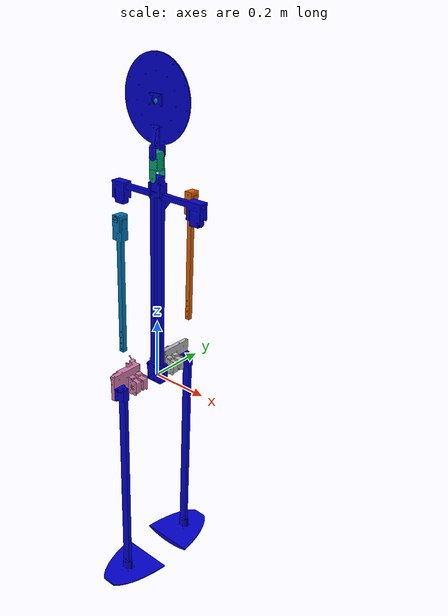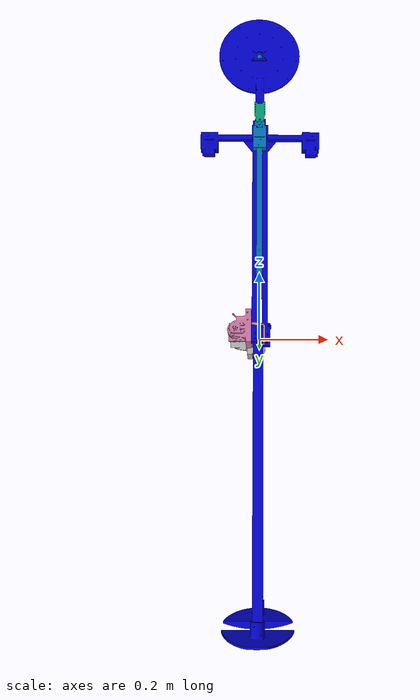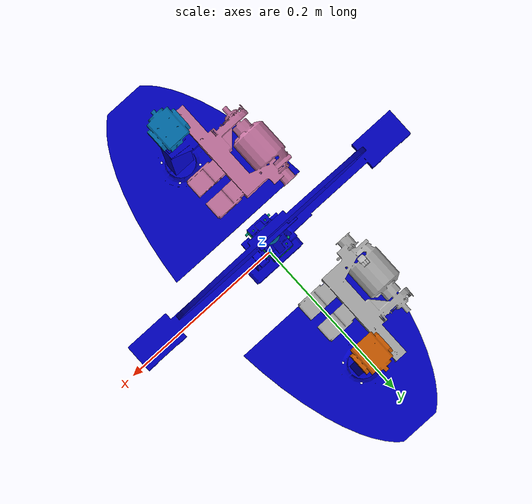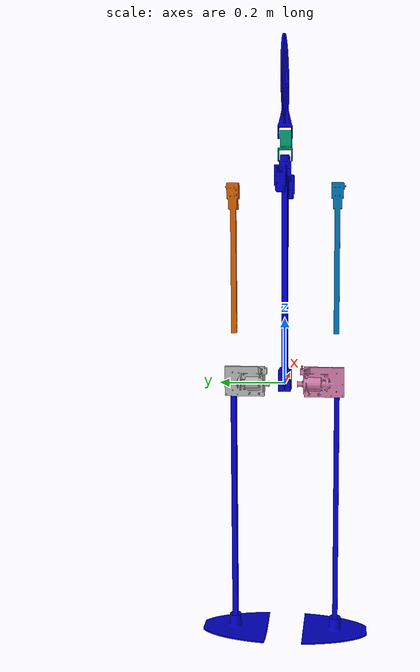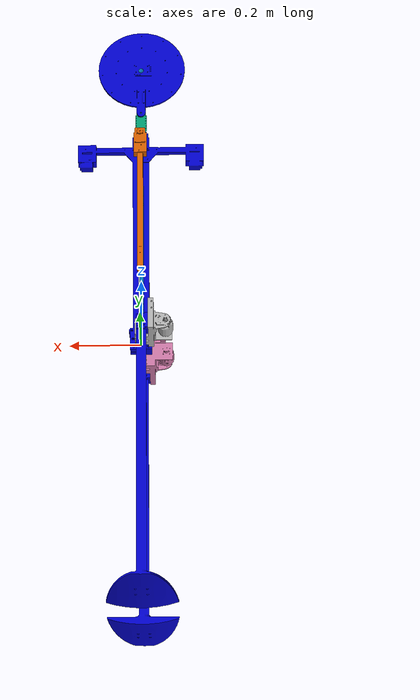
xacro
<?xml version="1.0" ?>
<!-- Marcheur passif -->
<!-- This file comes from Aldebaran romeo.urdf file with slight modifications:               -->
<!--             - rename joint_base by waist (joint base name in sot is already joint_base) -->
<!--             - waist joint goes from base_link to body (and not base_link)                   -->
<!--             - inverse trunkYaw joint direction (now from body to base_link)                 -->
<!-- Aldebaran file comes from                                                               -->

<robot name="robot"  xmlns:xacro="http://www.ros.org/wiki/xacro">

   <material name="blue">
      <color rgba="0 0 0.8 1"/>
   </material>

   <link name="world"/>

  <joint name="fixed" type="fixed">
    <parent link="world"/>
    <child link="base_link"/>
</joint>

<!-- virtual link with a virtual joint to make the root link -->

  <link name="base_link">
    <inertial>
      <mass value="1.635"/>
      <inertia ixx="86e-03" ixy="-39.84e-6" ixz="3.991e-4" iyy="83e-3" iyz="-38.29e-6" izz="4e-3"/>
      <origin rpy="0 0 0" xyz="0 0 0.17346"/>
    </inertial>
    <visual>
      <geometry>
        <mesh filename="package://yoyoman01_sot_description/meshes/BUSTE.stl" scale="0.001 0.001 0.001"/>
      </geometry>
    <origin rpy="0 0 -1.57075" xyz="0 0 0"/>
    <material name="blue"/>
    </visual>
    <collision>
      <geometry>
        <mesh filename="package://yoyoman01_sot_description/meshes/BUSTE.stl" scale="0.001 0.001 0.001"/>
      </geometry>
    <origin rpy="0 0 -1.57075" xyz="0 0 0"/>
    </collision>
  </link>

  <joint name="Neck" type="revolute">
    <parent link="base_link"/>
    <child link="NeckLink"/>
    <origin rpy="0 0 0" xyz="0 0 0.675"/>
    <axis xyz="0 1 0"/>
    <limit effort="1.5" lower="-0.5" upper="0.5" velocity="6.175333333"/>
  </joint>
  <link name="NeckLink">
    <inertial>
      <mass value="0.061"/>
      <inertia ixx="2.95e-5" ixy="-7.67e-9" ixz="-3.61e-9" iyy="2.53e-5" iyz="-3.05e-6" izz="1.09e-5"/>
      <origin rpy="0 0 0" xyz="0 0 0.03"/>
    </inertial>
    <visual>
      <geometry>
        <mesh filename="package://yoyoman01_sot_description/meshes/COU.stl" scale="0.001 0.001 0.001"/>
      </geometry>
    <origin rpy="0 0 1.57075" xyz="0 0 0"/>
    </visual>
    <collision>
      <geometry>
        <mesh filename="package://yoyoman01_sot_description/meshes/COU.stl" scale="0.001 0.001 0.001"/>
      </geometry>
    <origin rpy="0 0 1.57075" xyz="0 0 0"/>
    </collision>
  </link>

 <joint name="Head" type="revolute">
    <parent link="NeckLink"/>
    <child link="HeadLink"/>
    <origin rpy="0 0 0" xyz="0 0 0.064502"/>
    <axis xyz="0 1 0"/>
    <limit effort="1.5" lower="-0.5" upper="0.5" velocity="6.175333333"/>
  </joint>
  <link name="HeadLink">
    <inertial>
      <mass value="0.340"/>
      <inertia ixx="2e-3" ixy="-129.7e-9" ixz="5.391e-5" iyy="3e-3" iyz="-267.9e-9" izz="1e-3"/>
      <origin rpy="0 0 0" xyz="0 0 0.143385"/>
    </inertial>
    <visual>
      <geometry>
        <mesh filename="package://yoyoman01_sot_description/meshes/TETE.stl" scale="0.001 0.001 0.001"/>
      </geometry>
    <origin rpy="0 0 1.57075 " xyz="0 0 0"/>
    <material name="blue"/>
    </visual>
    <collision>
      <geometry>
        <mesh filename="package://yoyoman01_sot_description/meshes/TETE.stl" scale="0.001 0.001 0.001"/>
      </geometry>
    <origin rpy="0 0 1.57075 " xyz="0 0 0"/>
    </collision>
  </link>

<joint name="Rarm" type="revolute">
    <parent link="base_link"/>
    <child link="RArmLink"/>
    <origin rpy="0 0 0" xyz="0 -0.155 0.589901 "/>
    <axis xyz="0 1 0"/>
    <limit effort="4.1" lower="-3" upper="3" velocity="4.814666667"/>
  </joint>
<link name="RArmLink">
    <inertial>
      <mass value="0.172"/>
      <inertia ixx="3e-3" ixy="-2.011e-20" ixz="-3.61e-9" iyy="3e-3" iyz="3.05e-6" izz="2.475e-5"/>
      <origin rpy="0 0 0 " xyz="0 0 -0.10032"/>
    </inertial>
    <visual>
      <geometry>
        <mesh filename="package://yoyoman01_sot_description/meshes/BRAS.stl" scale="0.001 0.001 0.001"/>
      </geometry>
    <origin rpy="0 0 -1.57075" xyz="0 0 0"/>
    </visual>
    <collision>
      <geometry>
        <mesh filename="package://yoyoman01_sot_description/meshes/BRAS.stl" scale="0.001 0.001 0.001"/>
      </geometry>
    <origin rpy="0 0 -1.57075" xyz="0 0 0"/>
    </collision>
  </link>

<joint name="Larm" type="revolute">
    <parent link="base_link"/>
    <child link="LArmLink"/>
    <origin rpy="0 0 0" xyz="0 0.155 0.589901 "/>
    <axis xyz="0 1 0"/>
    <limit effort="4.1" lower="-3" upper="3" velocity="4.814666667"/>
  </joint>
<link name="LArmLink">
    <inertial>
      <mass value="0.172"/>
      <inertia ixx="3e-3" ixy="2.011e-20" ixz="-3.61e-9" iyy="3e-3" iyz="-3.05e-6" izz="2.475e-5"/>
      <origin rpy="0 0 0 " xyz="0 0 -0.10032"/>
    </inertial>
    <visual>
      <geometry>
        <mesh filename="package://yoyoman01_sot_description/meshes/BRAS.stl" scale="0.001 0.001 0.001"/>
      </geometry>
    <origin rpy="0 0 1.57075" xyz="0 0 0"/>
    </visual>
    <collision>
      <geometry>
        <mesh filename="package://yoyoman01_sot_description/meshes/BRAS.stl" scale="0.001 0.001 0.001"/>
      </geometry>
    <origin rpy="0 0 1.57075" xyz="0 0 0"/>
    </collision>
  </link>

  <joint name="RHip" type="revolute">
    <parent link="base_link"/>
    <child link="RHipLink"/>
    <origin rpy="0 0 0" xyz="0 -0.09 0"/>
    <axis xyz="0 1 0"/>
    <limit effort="6.672" lower="-3" upper="3" velocity="10"/>
  </joint>
  <link name="RHipLink">
    <inertial>
      <mass value="0.816"/>
      <inertia ixx="0.001" ixy="1.921e-4" ixz="-0.0001443" iyy="0.002" iyz="1.291e-4" izz="0.002"/>
      <origin rpy="0 0 0" xyz="0.0506 -0.0137 0.0101"/>
    </inertial>
    <visual>
      <geometry>
        <mesh filename="package://yoyoman01_sot_description/meshes/HANCHE_D.stl" scale="0.001 0.001 0.001"/>
      </geometry>
    <origin rpy="0 3.14 1.57075" xyz="0 0 0"/>
    </visual>
    <collision>
      <geometry>
        <mesh filename="package://yoyoman01_sot_description/meshes/HANCHE_D.stl" scale="0.001 0.001 0.001"/>
      </geometry>
    <origin rpy="0 3.14 1.57075" xyz="0 0 0"/>
    </collision>
  </link>

  <joint name="LHip" type="revolute">
    <parent link="base_link"/>
    <child link="LHipLink"/>
    <origin rpy="0 0 0" xyz="0 0.09 0"/>
    <axis xyz="0 1 0"/>
    <limit effort="6.672" lower="-3" upper="3" velocity="10"/>
  </joint>
  <link name="LHipLink">
    <inertial>
      <mass value="0.816"/>
      <inertia ixx="0.001" ixy="-1.921e-4" ixz="-0.0001443" iyy="0.002" iyz="-1.291e-4" izz="0.002"/>
      <origin rpy="0 0 0" xyz="0.0506 0.0137 0.0101"/>
    </inertial>
    <visual>
      <geometry>
        <mesh filename="package://yoyoman01_sot_description/meshes/HANCHE_G.stl" scale="0.001 0.001 0.001"/>
      </geometry>
    <origin rpy="0 0 1.57075" xyz="0 0 0"/>
    </visual>
    <collision>
      <geometry>
        <mesh filename="package://yoyoman01_sot_description/meshes/HANCHE_G.stl" scale="0.001 0.001 0.001"/>
      </geometry>
    <origin rpy="0 0 1.57075" xyz="0 0 0"/>
    </collision>
  </link>

  <joint name="RKnee" type="fixed">
    <parent link="RHipLink"/>
    <child link="RKneeLink"/>
    <origin rpy="0 0 0" xyz="-0.021 -0.068 -0.01"/>
    <axis xyz="0 0 0"/>
    <limit effort="50" lower="0" upper="0.04" velocity="1"/>
  </joint>
  <link name="RKneeLink">
    <inertial>
      <mass value="0.839"/>
      <inertia ixx="80e-3" ixy="17.42e-6" ixz="-154.3e-6" iyy="80e-3" iyz="-3e-3" izz="2e-3"/>
      <origin rpy="0 0 0" xyz="0.01817 -0.01317 -0.557"/>
    </inertial>
    <visual>
      <geometry>
        <mesh filename="package://yoyoman01_sot_description/meshes/JAMBE_G.stl" scale="0.001 0.001 0.001"/>
      </geometry>
    <origin rpy="0 0 3.14" xyz="0 0 0"/>
    <material name="blue"/>
    </visual>
    <collision>
      <geometry>
        <mesh filename="package://yoyoman01_sot_description/meshes/JAMBE_G.stl" scale="0.001 0.001 0.001"/>
      </geometry>
    <origin rpy="0 0 3.14" xyz="0 0 0"/>
    </collision>
  </link>

  <joint name="LKnee" type="fixed">
    <parent link="LHipLink"/>
    <child link="LKneeLink"/>
    <origin rpy="0 0 0" xyz="-0.021 0.068 -0.01"/>
    <axis xyz="0 0 0"/>
    <limit effort="50" lower="0" upper="0.04" velocity="1"/>
  </joint>
  <link name="LKneeLink">
    <inertial>
      <mass value="0.839"/>
      <inertia ixx="80e-3" ixy="-17.42e-6" ixz="-154.3e-6" iyy="80e-3" iyz="3e-3" izz="2e-3"/>
      <origin rpy="0 0 0" xyz="0.01817 0.01317 -0.557"/>
    </inertial>
    <visual>
      <geometry>
        <mesh filename="package://yoyoman01_sot_description/meshes/JAMBE_D.stl" scale="0.001 0.001 0.001"/>
      </geometry>
    <origin rpy="0 0 3.14" xyz="0 0 0"/>
    <material name="blue"/>
    </visual>
    <collision>
      <geometry>
        <mesh filename="package://yoyoman01_sot_description/meshes/JAMBE_D.stl" scale="0.001 0.001 0.001"/>
      </geometry>
    <origin rpy="0 0 3.14" xyz="0 0 0"/>
    </collision>
  </link>

<!-- **********Virtual points on the top of the foots ********** -->

  <joint name="RFoot" type="fixed">
    <parent link="RKneeLink"/>
    <child link="RFootLink"/>
    <origin rpy="0 0 0" xyz="0.0187 0 -0.7775"/>
    <axis xyz="0 0 0"/>
  </joint>
    <link name="RFootLink">
  </link>

  <joint name="LFoot" type="fixed">
    <parent link="LKneeLink"/>
    <child link="LFootLink"/>
    <origin rpy="0 0 0" xyz="0.0187 0 -0.7775"/>
    <axis xyz="0 0 0"/>
  </joint>
    <link name="LFootLink">
  </link>

<!-- IMU -->
<link name="imu_link">
  <inertial>
    <mass value="0.00"/>
    <origin rpy="0 0 0" xyz="0 0 0"/>
    <inertia ixx="0.000" ixy="0" ixz="0" iyy="0.000" iyz="0" izz="0.000"/>
  </inertial>

  <visual>
    <origin rpy="0 0 0" xyz="0 0 0"/>
    <geometry>
      <sphere radius="0.01"/>
    </geometry>
  </visual>

  <collision>
    <origin rpy="0 0 0" xyz="0 0 0"/>
    <geometry>
      <sphere radius="0.01"/>
    </geometry>
  </collision>
</link>

<!-- IMU Joint -->
  <joint name="imu_joint" type="fixed">
    <axis xyz="0 0 0"/>
    <origin xyz="0 0 0.15" rpy="0 0 0"/>
    <parent link="HeadLink"/>
    <child link="imu_link"/>
  </joint>

<!--
**********Transmissions**********
-->

  <transmission name="tranHead">
    <type>transmission_interface/SimpleTransmission</type>
    <joint name="Head">
      <hardwareInterface>hardware_interface/EffortJointInterface</hardwareInterface>
    </joint>
    <actuator name="motorHead">
      <hardwareInterface>hardware_interface/EffortJointInterface</hardwareInterface>

      <mechanicalReduction>1</mechanicalReduction>
    </actuator>
  </transmission>

  <transmission name="tranNeck">
    <type>transmission_interface/SimpleTransmission</type>
    <joint name="Neck">
      <hardwareInterface>hardware_interface/EffortJointInterface</hardwareInterface>
    </joint>
    <actuator name="motorNeck">
      <hardwareInterface>hardware_interface/EffortJointInterface</hardwareInterface>
      <mechanicalReduction>1</mechanicalReduction>
    </actuator>
  </transmission>

  <transmission name="tranRarm">
    <type>transmission_interface/SimpleTransmission</type>
    <joint name="Rarm">
      <hardwareInterface>hardware_interface/EffortJointInterface</hardwareInterface>
    </joint>
    <actuator name="motorRarm">
      <hardwareInterface>hardware_interface/EffortJointInterface</hardwareInterface>
      <mechanicalReduction>1</mechanicalReduction>
    </actuator>
  </transmission>

  <transmission name="tranLarm">
    <type>transmission_interface/SimpleTransmission</type>
    <joint name="Larm">
      <hardwareInterface>hardware_interface/EffortJointInterface</hardwareInterface>
    </joint>
    <actuator name="motorLarm">
      <hardwareInterface>hardware_interface/EffortJointInterface</hardwareInterface>
      <mechanicalReduction>1</mechanicalReduction>
    </actuator>
  </transmission>

  <transmission name="tranRHip">
    <type>transmission_interface/SimpleTransmission</type>
    <joint name="RHip">
      <hardwareInterface>hardware_interface/EffortJointInterface</hardwareInterface>
    </joint>
    <actuator name="motorRHip">
      <hardwareInterface>hardware_interface/EffortJointInterface</hardwareInterface>
      <mechanicalReduction>1</mechanicalReduction>
    </actuator>
  </transmission>

  <transmission name="tranLHip">
    <type>transmission_interface/SimpleTransmission</type>
    <joint name="LHip">
      <hardwareInterface>hardware_interface/EffortJointInterface</hardwareInterface>
    </joint>
    <actuator name="motorLHip">
      <hardwareInterface>hardware_interface/EffortJointInterface</hardwareInterface>
      <mechanicalReduction>1</mechanicalReduction>
    </actuator>
  </transmission>

<gazebo>
    <plugin name="gazebo_ros_control" filename="libgazebo_ros_control.so">

       <ns/>
      <robotSimType>pal_hardware_gazebo/PalHardwareGazebo</robotSimType>
      <robotNamespace/>
      <controlPeriod>0.001</controlPeriod>
    </plugin>
    <selfCollide>true</selfCollide>
    <gravity>true</gravity>

<!-- IMU-->

    <plugin name="imu_link_controller" filename="libhector_gazebo_ros_imu.so">
      <updateRate>100.0</updateRate>
      <bodyName>imu_link</bodyName>
      <topicName>COMAN/raw_imu</topicName>
      <rpyOffsets>0 0 0</rpyOffsets>
      <gaussianNoise>0</gaussianNoise>
      <accelDrift>0.5 0.5 0.5</accelDrift>
      <accelGaussianNoise>0.35 0.35 0.3</accelGaussianNoise>
      <rateDrift>0.1 0.1 0.1</rateDrift>
      <rateGaussianNoise>0.05 0.05 0.015</rateGaussianNoise>
      <headingDrift>0.1</headingDrift>
      <headingGaussianNoise>0.05</headingGaussianNoise>
    </plugin>

  </gazebo>

  <gazebo reference="imu_link">

    <gravity>true</gravity>
    <sensor name="imu_sensor" type="imu">
      <always_on>true</always_on>
      <update_rate>1000.0</update_rate>
      <visualize>true</visualize>
      <topic>__default_topic__</topic>H
      <plugin filename="libgazebo_ros_imu_sensor.so" name="imu_plugin">
        <topicName>imu_gazebo</topicName>
        <bodyName>imu_link</bodyName>
        <updateRateHZ>1000.0</updateRateHZ>
        <gaussianNoise>0.0</gaussianNoise>
        <xyzOffset>0 0 0</xyzOffset>
        <rpyOffset>0 0 0</rpyOffset>
        <frameName>imu_link</frameName>
      </plugin>
      <pose>0 0 0 0 0 0</pose>
    </sensor>
  </gazebo>

		<!-- Imu definition required for DLS hardware interface of ros control -->
		<gazebo reference="imu_link">
			<sensor name="imu_sensor" type="imu">
				<always_on>1</always_on>
				<update_rate>10</update_rate>
				<imu>
					<noise>
						<type>gaussian</type>
						<rate>
							<mean>0</mean>
							<stddev>0</stddev>
							<bias_mean>0</bias_mean>
							<bias_stddev>0</bias_stddev>
						</rate>
						<accel>
							<mean>0</mean>
							<stddev>0</stddev>
							<bias_mean>0</bias_mean>
							<bias_stddev>0</bias_stddev>
						</accel>
					</noise>
				</imu>
			</sensor>
</gazebo>

</robot>
